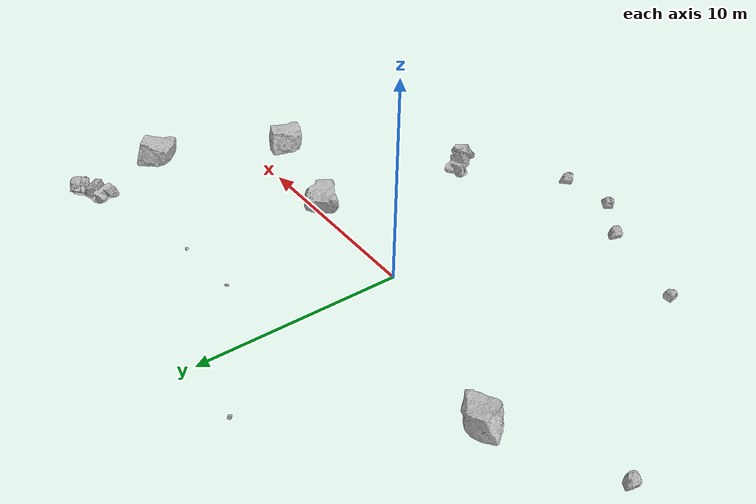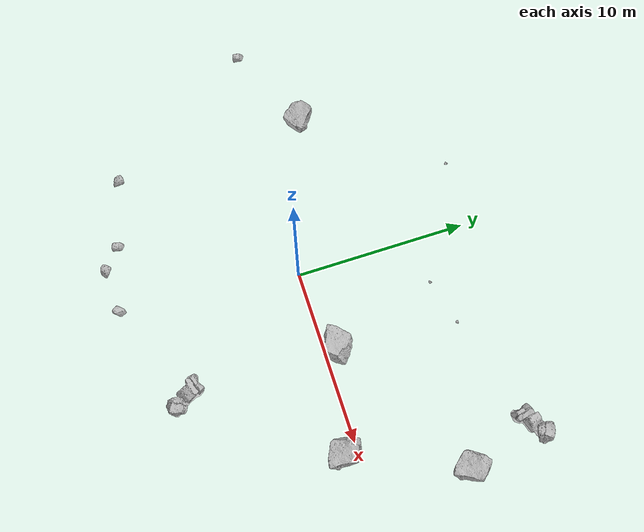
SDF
<sdf version="1.7">
 <world name="marsyard">
  <gravity>0 0 -9.81</gravity>
  <physics name="dart_physics" type="ignored">
   <max_step_size>0.003</max_step_size>
   <real_time_update_rate>333</real_time_update_rate>
   <real_time_factor>1.0</real_time_factor>
  </physics>
  <plugin filename="ignition-gazebo-physics-system" name="ignition::gazebo::systems::Physics"/>
  <plugin filename="ignition-gazebo-user-commands-system" name="ignition::gazebo::systems::UserCommands"/>
  <plugin filename="ignition-gazebo-scene-broadcaster-system" name="ignition::gazebo::systems::SceneBroadcaster"/>
  <plugin filename="ignition-gazebo-contact-system" name="ignition::gazebo::systems::Contact"/>
  <scene>
   <ambient>0.95 0.95 0.95 1</ambient>
   <background>0.70 0.70 0.70 1</background>
   <shadows>false</shadows>
  </scene>
  <light type="directional" name="sun">
   <cast_shadows>false</cast_shadows>
   <pose>0 0 30 0 0 0</pose>
   <diffuse>1 1 1 1</diffuse>
   <specular>0.15 0.15 0.15 1</specular>
   <direction>-0.35 0.1 -0.93</direction>
  </light>
  <model name="Rock_1">
   <static>true</static>
   <pose>4.9378 -7.9893 0.6729 0.0000 0.0000 2.2122</pose>
   <link name="link">
    <visual name="visual">
     <geometry><mesh><uri>package://rock_generator/rocks_ws/rock_2/meshes/rock_2.stl</uri></mesh></geometry>
    </visual>
   </link>
  </model>
  <model name="Rock_2">
   <static>true</static>
   <pose>10.6392 -0.8511 1.4207 0.0000 0.0000 -2.6940</pose>
   <link name="link">
    <visual name="visual">
     <geometry><mesh><uri>package://rock_generator/rocks_ws/rock_1/meshes/rock_1.stl</uri></mesh></geometry>
    </visual>
    <collision name="collision">
     <geometry><mesh><uri>package://rock_generator/rocks_ws/rock_1/meshes/rock_1.stl</uri></mesh></geometry>
    </collision>
   </link>
  </model>
  <model name="Rock_4">
   <static>true</static>
   <pose>-2.9996 -10.2837 1.6177 0.0000 0.0000 -2.6756</pose>
   <link name="link">
    <visual name="visual">
     <geometry><mesh><uri>package://rock_generator/rocks_ws/rock_3/meshes/rock_3.stl</uri></mesh></geometry>
    </visual>
    <collision name="collision">
     <geometry><mesh><uri>package://rock_generator/rocks_ws/rock_3/meshes/rock_3.stl</uri></mesh></geometry>
    </collision>
   </link>
  </model>
  <model name="Rock_6">
   <static>true</static>
   <pose>5.6959 7.3757 1.2747 0.0000 0.0000 2.4333</pose>
   <link name="link">
    <visual name="visual">
     <geometry><mesh><uri>package://rock_generator/rocks_ws/rock_7/meshes/rock_7.stl</uri></mesh></geometry>
    </visual>
    <collision name="collision">
     <geometry><mesh><uri>package://rock_generator/rocks_ws/rock_7/meshes/rock_7.stl</uri></mesh></geometry>
    </collision>
   </link>
  </model>
  <model name="Rock_11">
   <static>true</static>
   <pose>13.3129 5.1308 1.3743 0.0000 0.0000 -3.1296</pose>
   <link name="link">
    <visual name="visual">
     <geometry><mesh><uri>package://rock_generator/rocks_ws/rock_1/meshes/rock_1.stl</uri></mesh></geometry>
    </visual>
   </link>
  </model>
  <model name="Rock_12">
   <static>true</static>
   <pose>-14.3786 0.6341 0.8644 0.0000 0.0000 -0.7014</pose>
   <link name="link">
    <visual name="visual">
     <geometry><mesh><uri>package://rock_generator/rocks_ws/rock_3/meshes/rock_3.stl</uri></mesh></geometry>
    </visual>
   </link>
  </model>
  <model name="Rock_14">
   <static>true</static>
   <pose>-3.7455 10.3958 0.7164 0.0000 0.0000 -0.5424</pose>
   <link name="link">
    <visual name="visual">
     <geometry><mesh><uri>package://rock_generator/rocks_ws/rock_9/meshes/rock_9.stl</uri></mesh></geometry>
    </visual>
   </link>
  </model>
  <model name="Rock_15">
   <static>true</static>
   <pose>-0.4489 -10.0866 1.6486 0.0000 0.0000 -1.3181</pose>
   <link name="link">
    <visual name="visual">
     <geometry><mesh><uri>package://rock_generator/rocks_ws/rock_3/meshes/rock_3.stl</uri></mesh></geometry>
    </visual>
    <collision name="collision">
     <geometry><mesh><uri>package://rock_generator/rocks_ws/rock_3/meshes/rock_3.stl</uri></mesh></geometry>
    </collision>
   </link>
  </model>
  <model name="Rock_17">
   <static>true</static>
   <pose>-8.5934 -8.4111 0.7380 0.0000 0.0000 2.7058</pose>
   <link name="link">
    <visual name="visual">
     <geometry><mesh><uri>package://rock_generator/rocks_ws/rock_3/meshes/rock_3.stl</uri></mesh></geometry>
    </visual>
    <collision name="collision">
     <geometry><mesh><uri>package://rock_generator/rocks_ws/rock_3/meshes/rock_3.stl</uri></mesh></geometry>
    </collision>
   </link>
  </model>
  <model name="Rock_18">
   <static>true</static>
   <pose>12.1857 9.2049 1.4229 0.0000 0.0000 -2.5841</pose>
   <link name="link">
    <visual name="visual">
     <geometry><mesh><uri>package://rock_generator/rocks_ws/rock_2/meshes/rock_2.stl</uri></mesh></geometry>
    </visual>
    <collision name="collision">
     <geometry><mesh><uri>package://rock_generator/rocks_ws/rock_2/meshes/rock_2.stl</uri></mesh></geometry>
    </collision>
   </link>
  </model>
  <model name="Rock_21">
   <static>true</static>
   <pose>-9.2141 3.0259 0.6786 0.0000 0.0000 -1.7361</pose>
   <link name="link">
    <visual name="visual">
     <geometry><mesh><uri>package://rock_generator/rocks_ws/rock_1/meshes/rock_1.stl</uri></mesh></geometry>
    </visual>
    <collision name="collision">
     <geometry><mesh><uri>package://rock_generator/rocks_ws/rock_1/meshes/rock_1.stl</uri></mesh></geometry>
    </collision>
   </link>
  </model>
  <model name="Rock_22">
   <static>true</static>
   <pose>-4.3916 -9.3383 1.0735 0.0000 0.0000 -0.8025</pose>
   <link name="link">
    <visual name="visual">
     <geometry><mesh><uri>package://rock_generator/rocks_ws/rock_3/meshes/rock_3.stl</uri></mesh></geometry>
    </visual>
    <collision name="collision">
     <geometry><mesh><uri>package://rock_generator/rocks_ws/rock_3/meshes/rock_3.stl</uri></mesh></geometry>
    </collision>
   </link>
  </model>
  <model name="Rock_23">
   <static>true</static>
   <pose>4.8522 0.5284 1.3769 0.0000 0.0000 1.6537</pose>
   <link name="link">
    <visual name="visual">
     <geometry><mesh><uri>package://rock_generator/rocks_ws/rock_1/meshes/rock_1.stl</uri></mesh></geometry>
    </visual>
   </link>
  </model>
  <model name="Rock_24">
   <static>true</static>
   <pose>2.9489 6.8848 0.8079 0.0000 0.0000 -3.0120</pose>
   <link name="link">
    <visual name="visual">
     <geometry><mesh><uri>package://rock_generator/rocks_ws/rock_7/meshes/rock_7.stl</uri></mesh></geometry>
    </visual>
    <collision name="collision">
     <geometry><mesh><uri>package://rock_generator/rocks_ws/rock_7/meshes/rock_7.stl</uri></mesh></geometry>
    </collision>
   </link>
  </model>
 </world>
</sdf>
